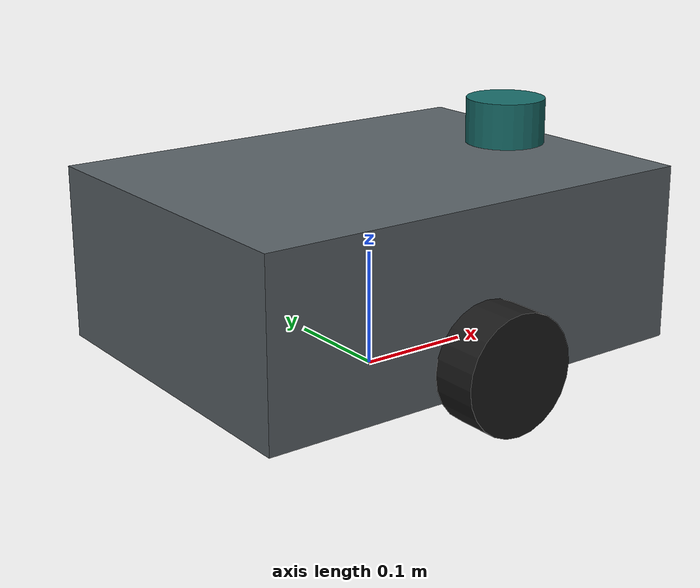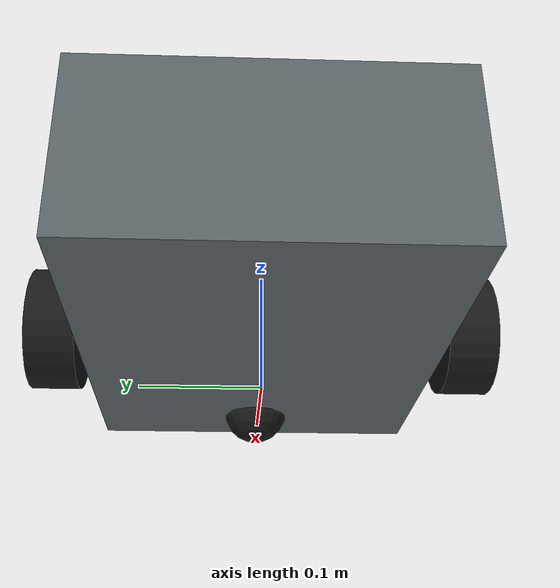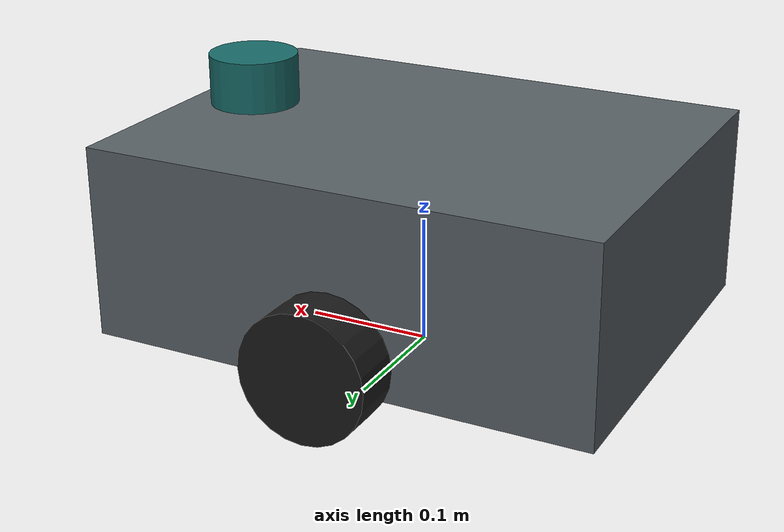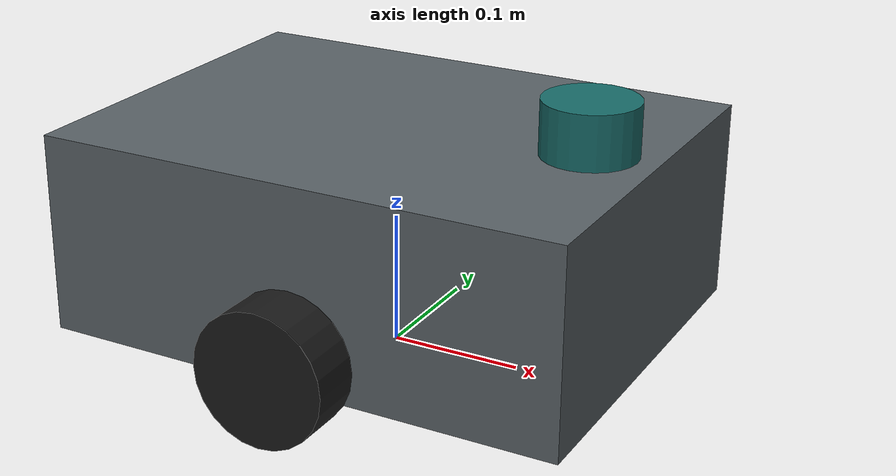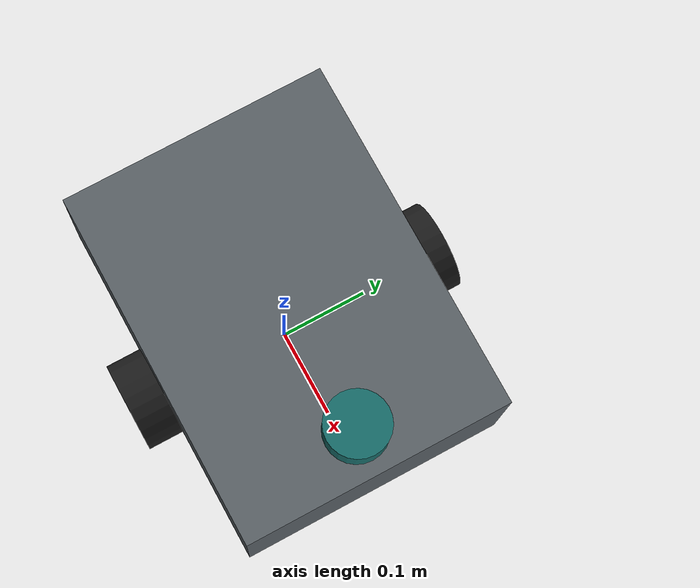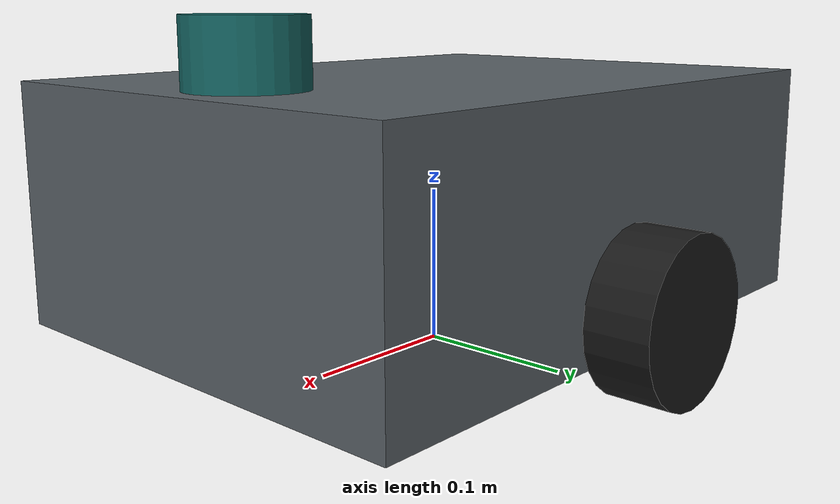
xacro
<?xml version="1.0"?>
<robot name="home_robot" xmlns:xacro="http://www.ros.org/wiki/xacro">

  <xacro:property name="base_length" value="0.40"/>
  <xacro:property name="base_width" value="0.30"/>
  <xacro:property name="base_height" value="0.15"/>
  <xacro:property name="base_mass" value="8.0"/>

  <xacro:property name="wheel_radius" value="0.05"/>
  <xacro:property name="wheel_width" value="0.04"/>
  <xacro:property name="wheel_mass" value="0.5"/>
  <xacro:property name="wheel_separation" value="0.34"/>

  <xacro:property name="caster_radius" value="0.03"/>
  <xacro:property name="caster_mass" value="0.2"/>

  <!-- Height of base_link above the ground plane. -->
  <xacro:property name="base_clearance" value="0.10"/>

  <material name="chassis_grey"><color rgba="0.35 0.38 0.40 1.0"/></material>
  <material name="wheel_black"><color rgba="0.10 0.10 0.10 1.0"/></material>
  <material name="sensor_teal"><color rgba="0.09 0.42 0.41 1.0"/></material>

  <xacro:macro name="box_inertial" params="mass x y z *origin">
    <inertial>
      <xacro:insert_block name="origin"/>
      <mass value="${mass}"/>
      <inertia
        ixx="${mass * (y*y + z*z) / 12.0}" ixy="0.0" ixz="0.0"
        iyy="${mass * (x*x + z*z) / 12.0}" iyz="0.0"
        izz="${mass * (x*x + y*y) / 12.0}"/>
    </inertial>
  </xacro:macro>

  <xacro:macro name="wheel" params="prefix reflect">
    <link name="${prefix}_wheel_link">
      <visual>
        <origin xyz="0 0 0" rpy="${pi/2} 0 0"/>
        <geometry><cylinder radius="${wheel_radius}" length="${wheel_width}"/></geometry>
        <material name="wheel_black"/>
      </visual>
      <collision>
        <origin xyz="0 0 0" rpy="${pi/2} 0 0"/>
        <geometry><cylinder radius="${wheel_radius}" length="${wheel_width}"/></geometry>
      </collision>
      <inertial>
        <origin xyz="0 0 0" rpy="${pi/2} 0 0"/>
        <mass value="${wheel_mass}"/>
        <inertia
          ixx="${wheel_mass * (3*wheel_radius*wheel_radius + wheel_width*wheel_width) / 12.0}" ixy="0.0" ixz="0.0"
          iyy="${wheel_mass * (3*wheel_radius*wheel_radius + wheel_width*wheel_width) / 12.0}" iyz="0.0"
          izz="${wheel_mass * wheel_radius * wheel_radius / 2.0}"/>
      </inertial>
    </link>

    <joint name="${prefix}_wheel_joint" type="continuous">
      <parent link="base_link"/>
      <child link="${prefix}_wheel_link"/>
      <origin xyz="0 ${reflect * wheel_separation / 2.0} ${wheel_radius - base_clearance}" rpy="0 0 0"/>
      <axis xyz="0 1 0"/>
      <dynamics damping="0.01" friction="0.01"/>
    </joint>

    <gazebo reference="${prefix}_wheel_link">
      <mu1>1.0</mu1>
      <mu2>1.0</mu2>
    </gazebo>
  </xacro:macro>

  <!-- base_footprint sits on the ground: Nav2 and the odometry frame use it. -->
  <link name="base_footprint"/>

  <joint name="base_footprint_joint" type="fixed">
    <parent link="base_footprint"/>
    <child link="base_link"/>
    <origin xyz="0 0 ${base_clearance}" rpy="0 0 0"/>
  </joint>

  <link name="base_link">
    <visual>
      <origin xyz="0 0 0" rpy="0 0 0"/>
      <geometry><box size="${base_length} ${base_width} ${base_height}"/></geometry>
      <material name="chassis_grey"/>
    </visual>
    <collision>
      <origin xyz="0 0 0" rpy="0 0 0"/>
      <geometry><box size="${base_length} ${base_width} ${base_height}"/></geometry>
    </collision>
    <xacro:box_inertial mass="${base_mass}" x="${base_length}" y="${base_width}" z="${base_height}">
      <origin xyz="0 0 0" rpy="0 0 0"/>
    </xacro:box_inertial>
  </link>

  <xacro:wheel prefix="left" reflect="1"/>
  <xacro:wheel prefix="right" reflect="-1"/>

  <link name="caster_link">
    <visual>
      <geometry><sphere radius="${caster_radius}"/></geometry>
      <material name="wheel_black"/>
    </visual>
    <collision>
      <geometry><sphere radius="${caster_radius}"/></geometry>
    </collision>
    <inertial>
      <mass value="${caster_mass}"/>
      <inertia
        ixx="${2.0 * caster_mass * caster_radius * caster_radius / 5.0}" ixy="0.0" ixz="0.0"
        iyy="${2.0 * caster_mass * caster_radius * caster_radius / 5.0}" iyz="0.0"
        izz="${2.0 * caster_mass * caster_radius * caster_radius / 5.0}"/>
    </inertial>
  </link>

  <joint name="caster_joint" type="fixed">
    <parent link="base_link"/>
    <child link="caster_link"/>
    <origin xyz="${base_length / 2.0 - caster_radius - 0.02} 0 ${caster_radius - base_clearance}" rpy="0 0 0"/>
  </joint>

  <gazebo reference="caster_link">
    <mu1>0.0</mu1>
    <mu2>0.0</mu2>
  </gazebo>

  <link name="lidar_link">
    <visual>
      <geometry><cylinder radius="0.035" length="0.04"/></geometry>
      <material name="sensor_teal"/>
    </visual>
    <collision>
      <geometry><cylinder radius="0.035" length="0.04"/></geometry>
    </collision>
    <xacro:box_inertial mass="0.2" x="0.07" y="0.07" z="0.04">
      <origin xyz="0 0 0" rpy="0 0 0"/>
    </xacro:box_inertial>
  </link>

  <joint name="lidar_joint" type="fixed">
    <parent link="base_link"/>
    <child link="lidar_link"/>
    <origin xyz="${base_length / 2.0 - 0.05} 0 ${base_height / 2.0 + 0.02}" rpy="0 0 0"/>
  </joint>

  <link name="imu_link">
    <inertial>
      <mass value="0.05"/>
      <inertia ixx="1e-6" ixy="0.0" ixz="0.0" iyy="1e-6" iyz="0.0" izz="1e-6"/>
    </inertial>
  </link>

  <joint name="imu_joint" type="fixed">
    <parent link="base_link"/>
    <child link="imu_link"/>
    <origin xyz="0 0 0" rpy="0 0 0"/>
  </joint>

  <xacro:include filename="$(find robot_description)/urdf/robot.gazebo.xacro"/>

</robot>
